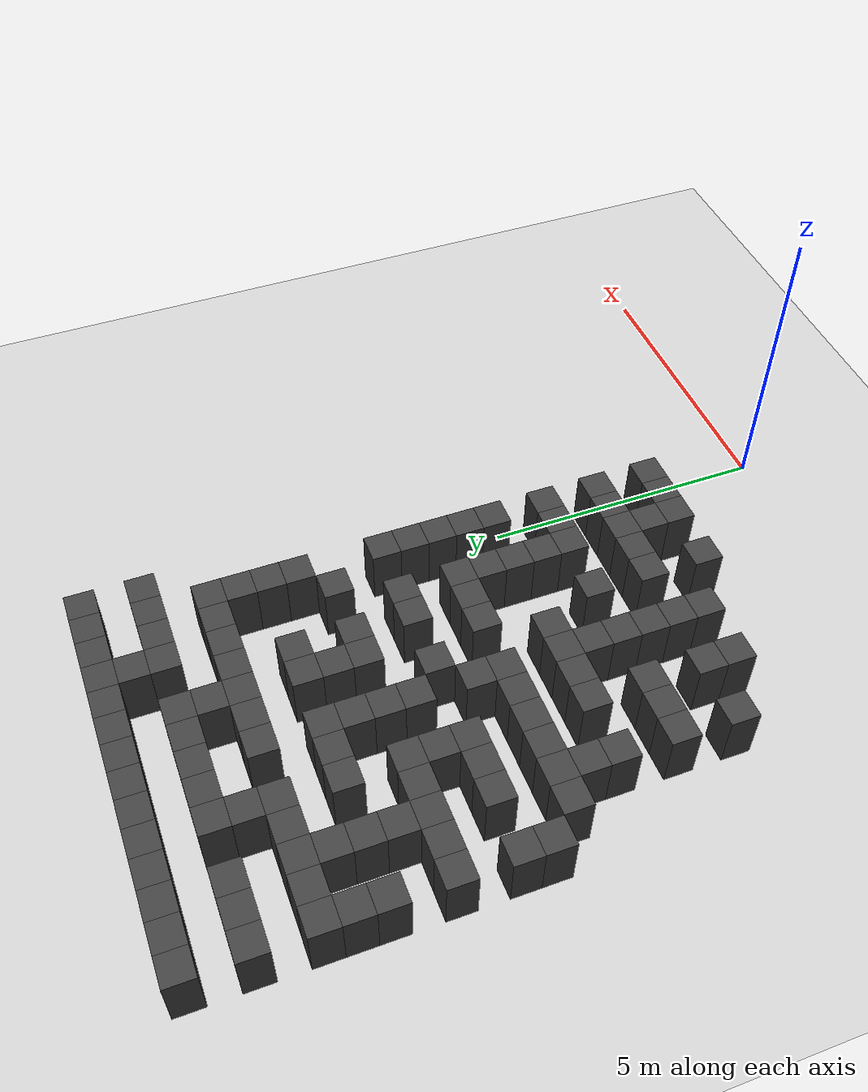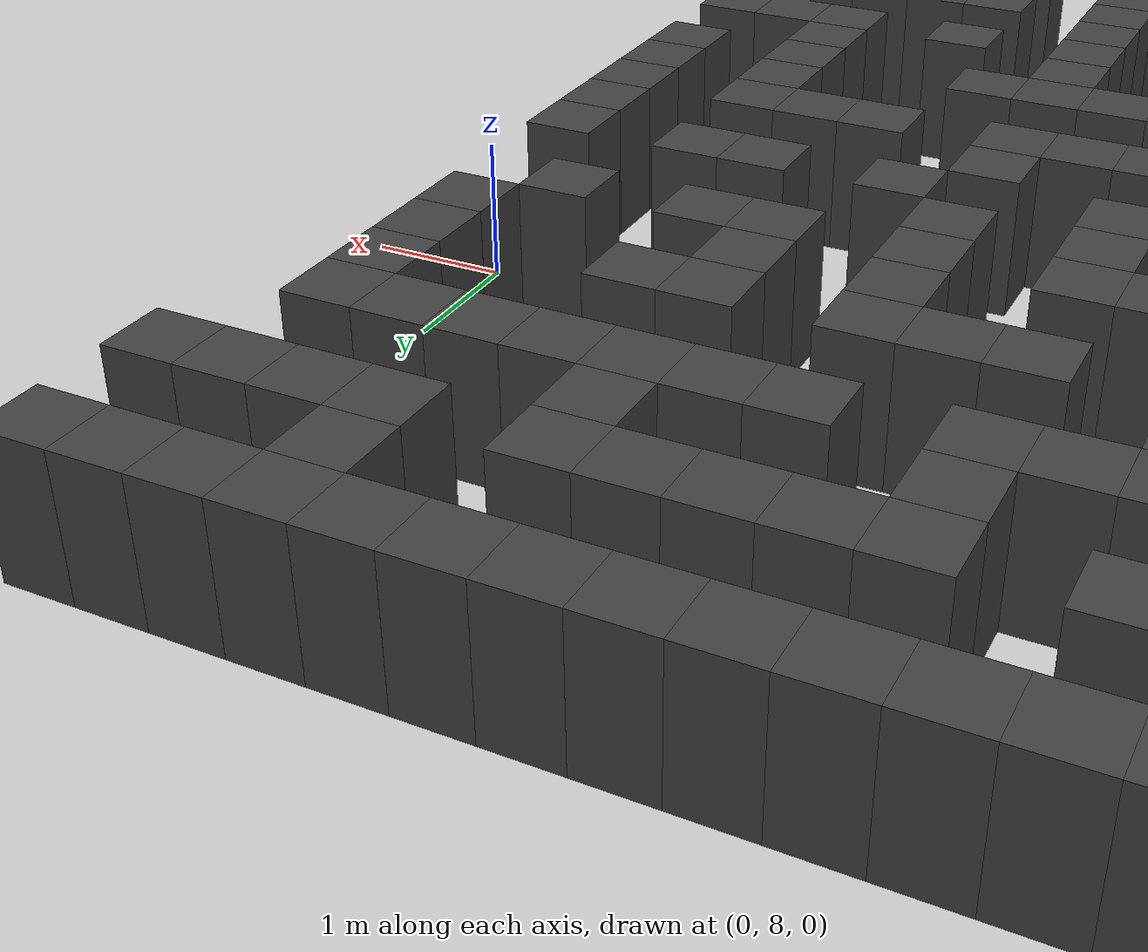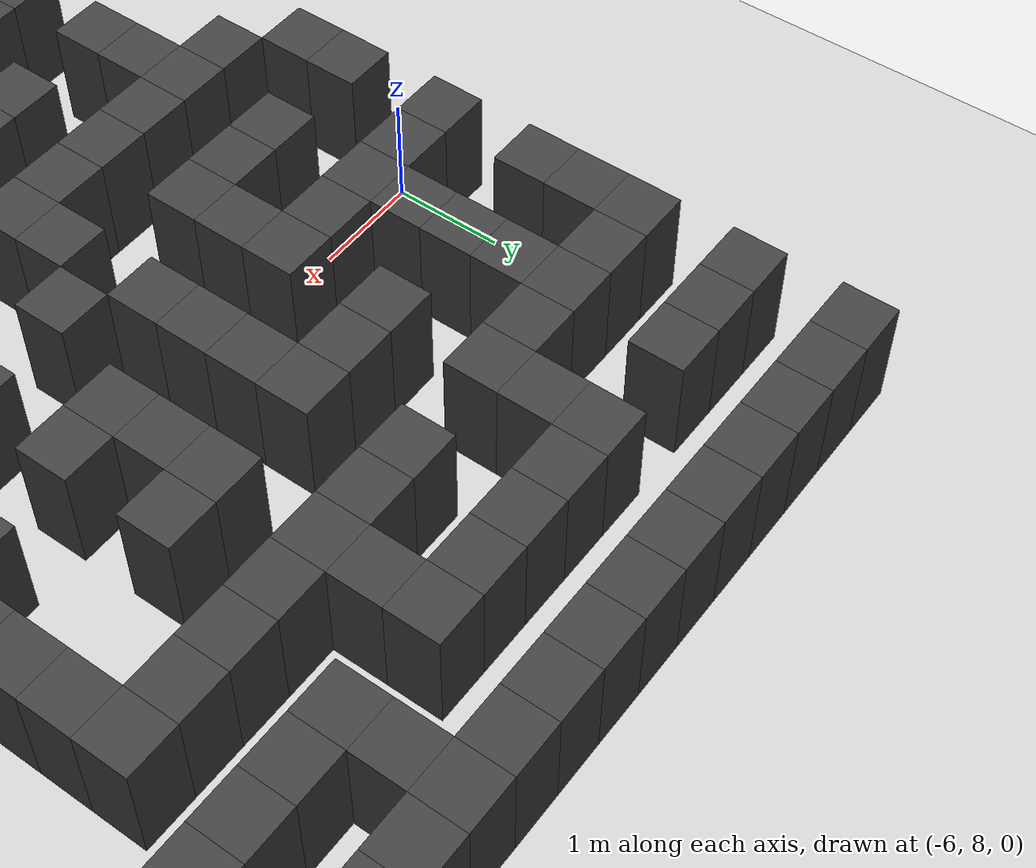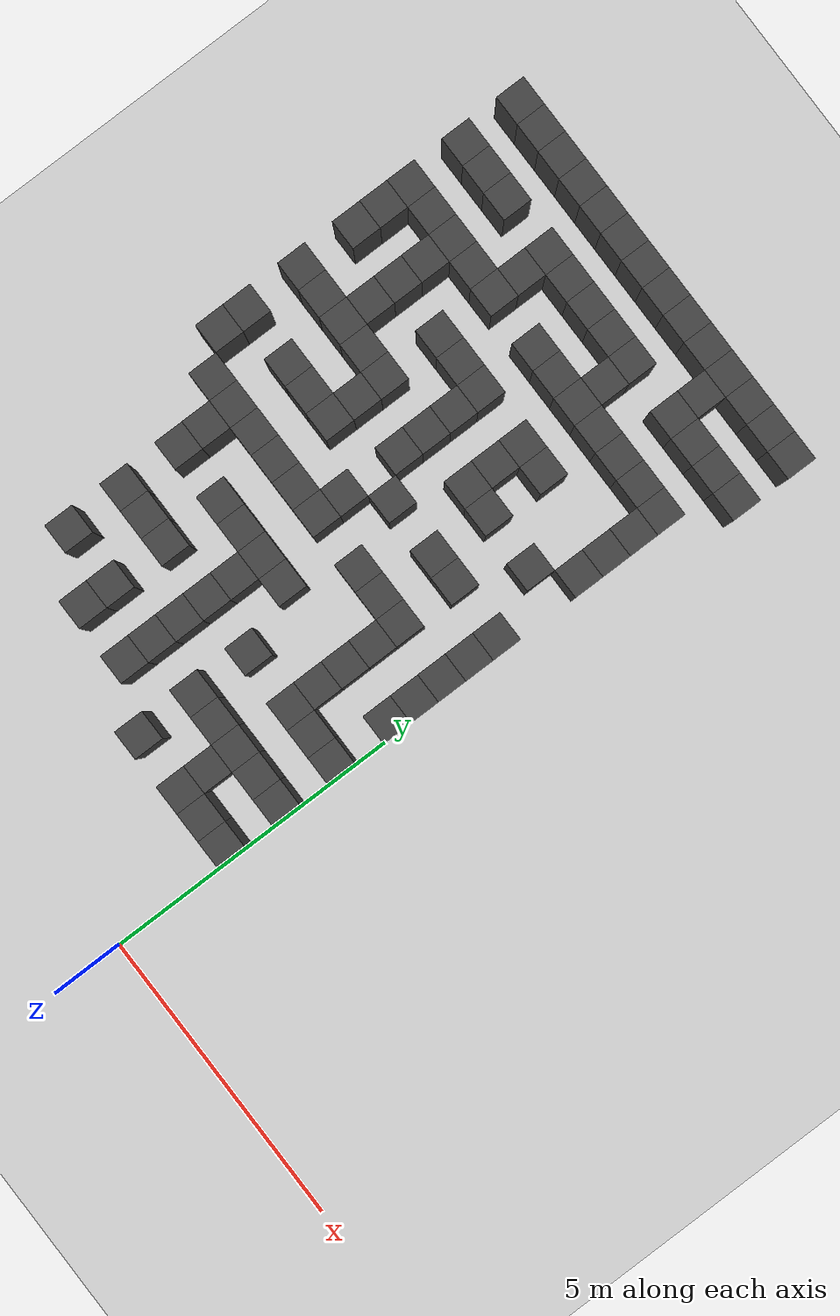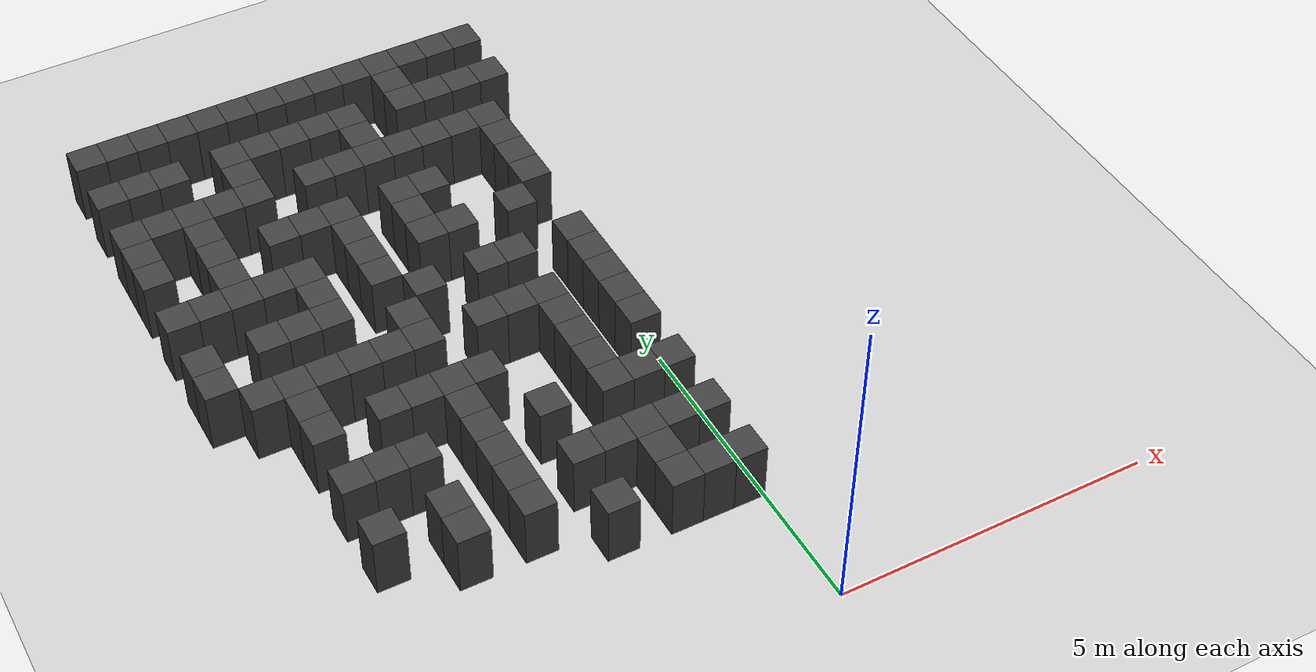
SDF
<sdf version="1.7">
 <world name="map_16734">
  <model name="ground_plane">
   <static>true</static>
   <link name="link">
    <collision name="collision">
     <geometry><plane><normal>0 0 1</normal><size>200 200</size></plane></geometry>
    </collision>
    <visual name="visual">
     <geometry><plane><normal>0 0 1</normal><size>200 200</size></plane></geometry>
     <material><ambient>0.8 0.8 0.8 1</ambient><diffuse>0.8 0.8 0.8 1</diffuse></material>
    </visual>
   </link>
  </model>
  <model name="maze_environment">
   <static>true</static>
   <link name="wall_12">
    <pose>-6.250 12.250 0.500 0 0 0</pose>
    <collision name="col"><geometry><box><size>0.5 0.5 1.0</size></box></geometry></collision>
    <visual name="vis">
     <geometry><box><size>0.5 0.5 1.0</size></box></geometry>
     <material><ambient>0.15 0.15 0.15 1</ambient><diffuse>0.25 0.25 0.25 1</diffuse></material>
    </visual>
   </link>
   <link name="wall_13">
    <pose>-5.750 12.250 0.500 0 0 0</pose>
    <collision name="col"><geometry><box><size>0.5 0.5 1.0</size></box></geometry></collision>
    <visual name="vis">
     <geometry><box><size>0.5 0.5 1.0</size></box></geometry>
     <material><ambient>0.15 0.15 0.15 1</ambient><diffuse>0.25 0.25 0.25 1</diffuse></material>
    </visual>
   </link>
   <link name="wall_14">
    <pose>-5.250 12.250 0.500 0 0 0</pose>
    <collision name="col"><geometry><box><size>0.5 0.5 1.0</size></box></geometry></collision>
    <visual name="vis">
     <geometry><box><size>0.5 0.5 1.0</size></box></geometry>
     <material><ambient>0.15 0.15 0.15 1</ambient><diffuse>0.25 0.25 0.25 1</diffuse></material>
    </visual>
   </link>
   <link name="wall_15">
    <pose>-4.750 12.250 0.500 0 0 0</pose>
    <collision name="col"><geometry><box><size>0.5 0.5 1.0</size></box></geometry></collision>
    <visual name="vis">
     <geometry><box><size>0.5 0.5 1.0</size></box></geometry>
     <material><ambient>0.15 0.15 0.15 1</ambient><diffuse>0.25 0.25 0.25 1</diffuse></material>
    </visual>
   </link>
   <link name="wall_16">
    <pose>-4.250 12.250 0.500 0 0 0</pose>
    <collision name="col"><geometry><box><size>0.5 0.5 1.0</size></box></geometry></collision>
    <visual name="vis">
     <geometry><box><size>0.5 0.5 1.0</size></box></geometry>
     <material><ambient>0.15 0.15 0.15 1</ambient><diffuse>0.25 0.25 0.25 1</diffuse></material>
    </visual>
   </link>
   <link name="wall_17">
    <pose>-3.750 12.250 0.500 0 0 0</pose>
    <collision name="col"><geometry><box><size>0.5 0.5 1.0</size></box></geometry></collision>
    <visual name="vis">
     <geometry><box><size>0.5 0.5 1.0</size></box></geometry>
     <material><ambient>0.15 0.15 0.15 1</ambient><diffuse>0.25 0.25 0.25 1</diffuse></material>
    </visual>
   </link>
   <link name="wall_18">
    <pose>-3.250 12.250 0.500 0 0 0</pose>
    <collision name="col"><geometry><box><size>0.5 0.5 1.0</size></box></geometry></collision>
    <visual name="vis">
     <geometry><box><size>0.5 0.5 1.0</size></box></geometry>
     <material><ambient>0.15 0.15 0.15 1</ambient><diffuse>0.25 0.25 0.25 1</diffuse></material>
    </visual>
   </link>
   <link name="wall_19">
    <pose>-2.750 12.250 0.500 0 0 0</pose>
    <collision name="col"><geometry><box><size>0.5 0.5 1.0</size></box></geometry></collision>
    <visual name="vis">
     <geometry><box><size>0.5 0.5 1.0</size></box></geometry>
     <material><ambient>0.15 0.15 0.15 1</ambient><diffuse>0.25 0.25 0.25 1</diffuse></material>
    </visual>
   </link>
   <link name="wall_20">
    <pose>-2.250 12.250 0.500 0 0 0</pose>
    <collision name="col"><geometry><box><size>0.5 0.5 1.0</size></box></geometry></collision>
    <visual name="vis">
     <geometry><box><size>0.5 0.5 1.0</size></box></geometry>
     <material><ambient>0.15 0.15 0.15 1</ambient><diffuse>0.25 0.25 0.25 1</diffuse></material>
    </visual>
   </link>
   <link name="wall_21">
    <pose>-1.750 12.250 0.500 0 0 0</pose>
    <collision name="col"><geometry><box><size>0.5 0.5 1.0</size></box></geometry></collision>
    <visual name="vis">
     <geometry><box><size>0.5 0.5 1.0</size></box></geometry>
     <material><ambient>0.15 0.15 0.15 1</ambient><diffuse>0.25 0.25 0.25 1</diffuse></material>
    </visual>
   </link>
   <link name="wall_22">
    <pose>-1.250 12.250 0.500 0 0 0</pose>
    <collision name="col"><geometry><box><size>0.5 0.5 1.0</size></box></geometry></collision>
    <visual name="vis">
     <geometry><box><size>0.5 0.5 1.0</size></box></geometry>
     <material><ambient>0.15 0.15 0.15 1</ambient><diffuse>0.25 0.25 0.25 1</diffuse></material>
    </visual>
   </link>
   <link name="wall_23">
    <pose>-0.750 12.250 0.500 0 0 0</pose>
    <collision name="col"><geometry><box><size>0.5 0.5 1.0</size></box></geometry></collision>
    <visual name="vis">
     <geometry><box><size>0.5 0.5 1.0</size></box></geometry>
     <material><ambient>0.15 0.15 0.15 1</ambient><diffuse>0.25 0.25 0.25 1</diffuse></material>
    </visual>
   </link>
   <link name="wall_24">
    <pose>-0.250 12.250 0.500 0 0 0</pose>
    <collision name="col"><geometry><box><size>0.5 0.5 1.0</size></box></geometry></collision>
    <visual name="vis">
     <geometry><box><size>0.5 0.5 1.0</size></box></geometry>
     <material><ambient>0.15 0.15 0.15 1</ambient><diffuse>0.25 0.25 0.25 1</diffuse></material>
    </visual>
   </link>
   <link name="wall_25">
    <pose>0.250 12.250 0.500 0 0 0</pose>
    <collision name="col"><geometry><box><size>0.5 0.5 1.0</size></box></geometry></collision>
    <visual name="vis">
     <geometry><box><size>0.5 0.5 1.0</size></box></geometry>
     <material><ambient>0.15 0.15 0.15 1</ambient><diffuse>0.25 0.25 0.25 1</diffuse></material>
    </visual>
   </link>
   <link name="wall_53">
    <pose>-1.250 11.750 0.500 0 0 0</pose>
    <collision name="col"><geometry><box><size>0.5 0.5 1.0</size></box></geometry></collision>
    <visual name="vis">
     <geometry><box><size>0.5 0.5 1.0</size></box></geometry>
     <material><ambient>0.15 0.15 0.15 1</ambient><diffuse>0.25 0.25 0.25 1</diffuse></material>
    </visual>
   </link>
   <link name="wall_66">
    <pose>-6.250 11.250 0.500 0 0 0</pose>
    <collision name="col"><geometry><box><size>0.5 0.5 1.0</size></box></geometry></collision>
    <visual name="vis">
     <geometry><box><size>0.5 0.5 1.0</size></box></geometry>
     <material><ambient>0.15 0.15 0.15 1</ambient><diffuse>0.25 0.25 0.25 1</diffuse></material>
    </visual>
   </link>
   <link name="wall_67">
    <pose>-5.750 11.250 0.500 0 0 0</pose>
    <collision name="col"><geometry><box><size>0.5 0.5 1.0</size></box></geometry></collision>
    <visual name="vis">
     <geometry><box><size>0.5 0.5 1.0</size></box></geometry>
     <material><ambient>0.15 0.15 0.15 1</ambient><diffuse>0.25 0.25 0.25 1</diffuse></material>
    </visual>
   </link>
   <link name="wall_68">
    <pose>-5.250 11.250 0.500 0 0 0</pose>
    <collision name="col"><geometry><box><size>0.5 0.5 1.0</size></box></geometry></collision>
    <visual name="vis">
     <geometry><box><size>0.5 0.5 1.0</size></box></geometry>
     <material><ambient>0.15 0.15 0.15 1</ambient><diffuse>0.25 0.25 0.25 1</diffuse></material>
    </visual>
   </link>
   <link name="wall_69">
    <pose>-4.250 11.250 0.500 0 0 0</pose>
    <collision name="col"><geometry><box><size>0.5 0.5 1.0</size></box></geometry></collision>
    <visual name="vis">
     <geometry><box><size>0.5 0.5 1.0</size></box></geometry>
     <material><ambient>0.15 0.15 0.15 1</ambient><diffuse>0.25 0.25 0.25 1</diffuse></material>
    </visual>
   </link>
   <link name="wall_70">
    <pose>-3.750 11.250 0.500 0 0 0</pose>
    <collision name="col"><geometry><box><size>0.5 0.5 1.0</size></box></geometry></collision>
    <visual name="vis">
     <geometry><box><size>0.5 0.5 1.0</size></box></geometry>
     <material><ambient>0.15 0.15 0.15 1</ambient><diffuse>0.25 0.25 0.25 1</diffuse></material>
    </visual>
   </link>
   <link name="wall_71">
    <pose>-3.250 11.250 0.500 0 0 0</pose>
    <collision name="col"><geometry><box><size>0.5 0.5 1.0</size></box></geometry></collision>
    <visual name="vis">
     <geometry><box><size>0.5 0.5 1.0</size></box></geometry>
     <material><ambient>0.15 0.15 0.15 1</ambient><diffuse>0.25 0.25 0.25 1</diffuse></material>
    </visual>
   </link>
   <link name="wall_72">
    <pose>-2.750 11.250 0.500 0 0 0</pose>
    <collision name="col"><geometry><box><size>0.5 0.5 1.0</size></box></geometry></collision>
    <visual name="vis">
     <geometry><box><size>0.5 0.5 1.0</size></box></geometry>
     <material><ambient>0.15 0.15 0.15 1</ambient><diffuse>0.25 0.25 0.25 1</diffuse></material>
    </visual>
   </link>
   <link name="wall_73">
    <pose>-2.250 11.250 0.500 0 0 0</pose>
    <collision name="col"><geometry><box><size>0.5 0.5 1.0</size></box></geometry></collision>
    <visual name="vis">
     <geometry><box><size>0.5 0.5 1.0</size></box></geometry>
     <material><ambient>0.15 0.15 0.15 1</ambient><diffuse>0.25 0.25 0.25 1</diffuse></material>
    </visual>
   </link>
   <link name="wall_74">
    <pose>-1.250 11.250 0.500 0 0 0</pose>
    <collision name="col"><geometry><box><size>0.5 0.5 1.0</size></box></geometry></collision>
    <visual name="vis">
     <geometry><box><size>0.5 0.5 1.0</size></box></geometry>
     <material><ambient>0.15 0.15 0.15 1</ambient><diffuse>0.25 0.25 0.25 1</diffuse></material>
    </visual>
   </link>
   <link name="wall_75">
    <pose>-0.750 11.250 0.500 0 0 0</pose>
    <collision name="col"><geometry><box><size>0.5 0.5 1.0</size></box></geometry></collision>
    <visual name="vis">
     <geometry><box><size>0.5 0.5 1.0</size></box></geometry>
     <material><ambient>0.15 0.15 0.15 1</ambient><diffuse>0.25 0.25 0.25 1</diffuse></material>
    </visual>
   </link>
   <link name="wall_76">
    <pose>-0.250 11.250 0.500 0 0 0</pose>
    <collision name="col"><geometry><box><size>0.5 0.5 1.0</size></box></geometry></collision>
    <visual name="vis">
     <geometry><box><size>0.5 0.5 1.0</size></box></geometry>
     <material><ambient>0.15 0.15 0.15 1</ambient><diffuse>0.25 0.25 0.25 1</diffuse></material>
    </visual>
   </link>
   <link name="wall_77">
    <pose>0.250 11.250 0.500 0 0 0</pose>
    <collision name="col"><geometry><box><size>0.5 0.5 1.0</size></box></geometry></collision>
    <visual name="vis">
     <geometry><box><size>0.5 0.5 1.0</size></box></geometry>
     <material><ambient>0.15 0.15 0.15 1</ambient><diffuse>0.25 0.25 0.25 1</diffuse></material>
    </visual>
   </link>
   <link name="wall_100">
    <pose>-4.250 10.750 0.500 0 0 0</pose>
    <collision name="col"><geometry><box><size>0.5 0.5 1.0</size></box></geometry></collision>
    <visual name="vis">
     <geometry><box><size>0.5 0.5 1.0</size></box></geometry>
     <material><ambient>0.15 0.15 0.15 1</ambient><diffuse>0.25 0.25 0.25 1</diffuse></material>
    </visual>
   </link>
   <link name="wall_101">
    <pose>-2.250 10.750 0.500 0 0 0</pose>
    <collision name="col"><geometry><box><size>0.5 0.5 1.0</size></box></geometry></collision>
    <visual name="vis">
     <geometry><box><size>0.5 0.5 1.0</size></box></geometry>
     <material><ambient>0.15 0.15 0.15 1</ambient><diffuse>0.25 0.25 0.25 1</diffuse></material>
    </visual>
   </link>
   <link name="wall_116">
    <pose>-6.250 10.250 0.500 0 0 0</pose>
    <collision name="col"><geometry><box><size>0.5 0.5 1.0</size></box></geometry></collision>
    <visual name="vis">
     <geometry><box><size>0.5 0.5 1.0</size></box></geometry>
     <material><ambient>0.15 0.15 0.15 1</ambient><diffuse>0.25 0.25 0.25 1</diffuse></material>
    </visual>
   </link>
   <link name="wall_117">
    <pose>-5.750 10.250 0.500 0 0 0</pose>
    <collision name="col"><geometry><box><size>0.5 0.5 1.0</size></box></geometry></collision>
    <visual name="vis">
     <geometry><box><size>0.5 0.5 1.0</size></box></geometry>
     <material><ambient>0.15 0.15 0.15 1</ambient><diffuse>0.25 0.25 0.25 1</diffuse></material>
    </visual>
   </link>
   <link name="wall_118">
    <pose>-5.250 10.250 0.500 0 0 0</pose>
    <collision name="col"><geometry><box><size>0.5 0.5 1.0</size></box></geometry></collision>
    <visual name="vis">
     <geometry><box><size>0.5 0.5 1.0</size></box></geometry>
     <material><ambient>0.15 0.15 0.15 1</ambient><diffuse>0.25 0.25 0.25 1</diffuse></material>
    </visual>
   </link>
   <link name="wall_119">
    <pose>-4.750 10.250 0.500 0 0 0</pose>
    <collision name="col"><geometry><box><size>0.5 0.5 1.0</size></box></geometry></collision>
    <visual name="vis">
     <geometry><box><size>0.5 0.5 1.0</size></box></geometry>
     <material><ambient>0.15 0.15 0.15 1</ambient><diffuse>0.25 0.25 0.25 1</diffuse></material>
    </visual>
   </link>
   <link name="wall_120">
    <pose>-4.250 10.250 0.500 0 0 0</pose>
    <collision name="col"><geometry><box><size>0.5 0.5 1.0</size></box></geometry></collision>
    <visual name="vis">
     <geometry><box><size>0.5 0.5 1.0</size></box></geometry>
     <material><ambient>0.15 0.15 0.15 1</ambient><diffuse>0.25 0.25 0.25 1</diffuse></material>
    </visual>
   </link>
   <link name="wall_121">
    <pose>-3.250 10.250 0.500 0 0 0</pose>
    <collision name="col"><geometry><box><size>0.5 0.5 1.0</size></box></geometry></collision>
    <visual name="vis">
     <geometry><box><size>0.5 0.5 1.0</size></box></geometry>
     <material><ambient>0.15 0.15 0.15 1</ambient><diffuse>0.25 0.25 0.25 1</diffuse></material>
    </visual>
   </link>
   <link name="wall_122">
    <pose>-2.750 10.250 0.500 0 0 0</pose>
    <collision name="col"><geometry><box><size>0.5 0.5 1.0</size></box></geometry></collision>
    <visual name="vis">
     <geometry><box><size>0.5 0.5 1.0</size></box></geometry>
     <material><ambient>0.15 0.15 0.15 1</ambient><diffuse>0.25 0.25 0.25 1</diffuse></material>
    </visual>
   </link>
   <link name="wall_123">
    <pose>-2.250 10.250 0.500 0 0 0</pose>
    <collision name="col"><geometry><box><size>0.5 0.5 1.0</size></box></geometry></collision>
    <visual name="vis">
     <geometry><box><size>0.5 0.5 1.0</size></box></geometry>
     <material><ambient>0.15 0.15 0.15 1</ambient><diffuse>0.25 0.25 0.25 1</diffuse></material>
    </visual>
   </link>
   <link name="wall_124">
    <pose>-1.750 10.250 0.500 0 0 0</pose>
    <collision name="col"><geometry><box><size>0.5 0.5 1.0</size></box></geometry></collision>
    <visual name="vis">
     <geometry><box><size>0.5 0.5 1.0</size></box></geometry>
     <material><ambient>0.15 0.15 0.15 1</ambient><diffuse>0.25 0.25 0.25 1</diffuse></material>
    </visual>
   </link>
   <link name="wall_125">
    <pose>-1.250 10.250 0.500 0 0 0</pose>
    <collision name="col"><geometry><box><size>0.5 0.5 1.0</size></box></geometry></collision>
    <visual name="vis">
     <geometry><box><size>0.5 0.5 1.0</size></box></geometry>
     <material><ambient>0.15 0.15 0.15 1</ambient><diffuse>0.25 0.25 0.25 1</diffuse></material>
    </visual>
   </link>
   <link name="wall_126">
    <pose>-0.750 10.250 0.500 0 0 0</pose>
    <collision name="col"><geometry><box><size>0.5 0.5 1.0</size></box></geometry></collision>
    <visual name="vis">
     <geometry><box><size>0.5 0.5 1.0</size></box></geometry>
     <material><ambient>0.15 0.15 0.15 1</ambient><diffuse>0.25 0.25 0.25 1</diffuse></material>
    </visual>
   </link>
   <link name="wall_127">
    <pose>-0.250 10.250 0.500 0 0 0</pose>
    <collision name="col"><geometry><box><size>0.5 0.5 1.0</size></box></geometry></collision>
    <visual name="vis">
     <geometry><box><size>0.5 0.5 1.0</size></box></geometry>
     <material><ambient>0.15 0.15 0.15 1</ambient><diffuse>0.25 0.25 0.25 1</diffuse></material>
    </visual>
   </link>
   <link name="wall_148">
    <pose>-6.250 9.750 0.500 0 0 0</pose>
    <collision name="col"><geometry><box><size>0.5 0.5 1.0</size></box></geometry></collision>
    <visual name="vis">
     <geometry><box><size>0.5 0.5 1.0</size></box></geometry>
     <material><ambient>0.15 0.15 0.15 1</ambient><diffuse>0.25 0.25 0.25 1</diffuse></material>
    </visual>
   </link>
   <link name="wall_149">
    <pose>-5.250 9.750 0.500 0 0 0</pose>
    <collision name="col"><geometry><box><size>0.5 0.5 1.0</size></box></geometry></collision>
    <visual name="vis">
     <geometry><box><size>0.5 0.5 1.0</size></box></geometry>
     <material><ambient>0.15 0.15 0.15 1</ambient><diffuse>0.25 0.25 0.25 1</diffuse></material>
    </visual>
   </link>
   <link name="wall_150">
    <pose>-0.250 9.750 0.500 0 0 0</pose>
    <collision name="col"><geometry><box><size>0.5 0.5 1.0</size></box></geometry></collision>
    <visual name="vis">
     <geometry><box><size>0.5 0.5 1.0</size></box></geometry>
     <material><ambient>0.15 0.15 0.15 1</ambient><diffuse>0.25 0.25 0.25 1</diffuse></material>
    </visual>
   </link>
   <link name="wall_166">
    <pose>-6.250 9.250 0.500 0 0 0</pose>
    <collision name="col"><geometry><box><size>0.5 0.5 1.0</size></box></geometry></collision>
    <visual name="vis">
     <geometry><box><size>0.5 0.5 1.0</size></box></geometry>
     <material><ambient>0.15 0.15 0.15 1</ambient><diffuse>0.25 0.25 0.25 1</diffuse></material>
    </visual>
   </link>
   <link name="wall_167">
    <pose>-5.250 9.250 0.500 0 0 0</pose>
    <collision name="col"><geometry><box><size>0.5 0.5 1.0</size></box></geometry></collision>
    <visual name="vis">
     <geometry><box><size>0.5 0.5 1.0</size></box></geometry>
     <material><ambient>0.15 0.15 0.15 1</ambient><diffuse>0.25 0.25 0.25 1</diffuse></material>
    </visual>
   </link>
   <link name="wall_168">
    <pose>-4.250 9.250 0.500 0 0 0</pose>
    <collision name="col"><geometry><box><size>0.5 0.5 1.0</size></box></geometry></collision>
    <visual name="vis">
     <geometry><box><size>0.5 0.5 1.0</size></box></geometry>
     <material><ambient>0.15 0.15 0.15 1</ambient><diffuse>0.25 0.25 0.25 1</diffuse></material>
    </visual>
   </link>
   <link name="wall_169">
    <pose>-3.750 9.250 0.500 0 0 0</pose>
    <collision name="col"><geometry><box><size>0.5 0.5 1.0</size></box></geometry></collision>
    <visual name="vis">
     <geometry><box><size>0.5 0.5 1.0</size></box></geometry>
     <material><ambient>0.15 0.15 0.15 1</ambient><diffuse>0.25 0.25 0.25 1</diffuse></material>
    </visual>
   </link>
   <link name="wall_170">
    <pose>-3.250 9.250 0.500 0 0 0</pose>
    <collision name="col"><geometry><box><size>0.5 0.5 1.0</size></box></geometry></collision>
    <visual name="vis">
     <geometry><box><size>0.5 0.5 1.0</size></box></geometry>
     <material><ambient>0.15 0.15 0.15 1</ambient><diffuse>0.25 0.25 0.25 1</diffuse></material>
    </visual>
   </link>
   <link name="wall_171">
    <pose>-2.250 9.250 0.500 0 0 0</pose>
    <collision name="col"><geometry><box><size>0.5 0.5 1.0</size></box></geometry></collision>
    <visual name="vis">
     <geometry><box><size>0.5 0.5 1.0</size></box></geometry>
     <material><ambient>0.15 0.15 0.15 1</ambient><diffuse>0.25 0.25 0.25 1</diffuse></material>
    </visual>
   </link>
   <link name="wall_172">
    <pose>-1.750 9.250 0.500 0 0 0</pose>
    <collision name="col"><geometry><box><size>0.5 0.5 1.0</size></box></geometry></collision>
    <visual name="vis">
     <geometry><box><size>0.5 0.5 1.0</size></box></geometry>
     <material><ambient>0.15 0.15 0.15 1</ambient><diffuse>0.25 0.25 0.25 1</diffuse></material>
    </visual>
   </link>
   <link name="wall_173">
    <pose>-0.250 9.250 0.500 0 0 0</pose>
    <collision name="col"><geometry><box><size>0.5 0.5 1.0</size></box></geometry></collision>
    <visual name="vis">
     <geometry><box><size>0.5 0.5 1.0</size></box></geometry>
     <material><ambient>0.15 0.15 0.15 1</ambient><diffuse>0.25 0.25 0.25 1</diffuse></material>
    </visual>
   </link>
   <link name="wall_190">
    <pose>-5.250 8.750 0.500 0 0 0</pose>
    <collision name="col"><geometry><box><size>0.5 0.5 1.0</size></box></geometry></collision>
    <visual name="vis">
     <geometry><box><size>0.5 0.5 1.0</size></box></geometry>
     <material><ambient>0.15 0.15 0.15 1</ambient><diffuse>0.25 0.25 0.25 1</diffuse></material>
    </visual>
   </link>
   <link name="wall_191">
    <pose>-3.250 8.750 0.500 0 0 0</pose>
    <collision name="col"><geometry><box><size>0.5 0.5 1.0</size></box></geometry></collision>
    <visual name="vis">
     <geometry><box><size>0.5 0.5 1.0</size></box></geometry>
     <material><ambient>0.15 0.15 0.15 1</ambient><diffuse>0.25 0.25 0.25 1</diffuse></material>
    </visual>
   </link>
   <link name="wall_192">
    <pose>-2.250 8.750 0.500 0 0 0</pose>
    <collision name="col"><geometry><box><size>0.5 0.5 1.0</size></box></geometry></collision>
    <visual name="vis">
     <geometry><box><size>0.5 0.5 1.0</size></box></geometry>
     <material><ambient>0.15 0.15 0.15 1</ambient><diffuse>0.25 0.25 0.25 1</diffuse></material>
    </visual>
   </link>
   <link name="wall_193">
    <pose>-0.250 8.750 0.500 0 0 0</pose>
    <collision name="col"><geometry><box><size>0.5 0.5 1.0</size></box></geometry></collision>
    <visual name="vis">
     <geometry><box><size>0.5 0.5 1.0</size></box></geometry>
     <material><ambient>0.15 0.15 0.15 1</ambient><diffuse>0.25 0.25 0.25 1</diffuse></material>
    </visual>
   </link>
   <link name="wall_208">
    <pose>-6.250 8.250 0.500 0 0 0</pose>
    <collision name="col"><geometry><box><size>0.5 0.5 1.0</size></box></geometry></collision>
    <visual name="vis">
     <geometry><box><size>0.5 0.5 1.0</size></box></geometry>
     <material><ambient>0.15 0.15 0.15 1</ambient><diffuse>0.25 0.25 0.25 1</diffuse></material>
    </visual>
   </link>
   <link name="wall_209">
    <pose>-5.750 8.250 0.500 0 0 0</pose>
    <collision name="col"><geometry><box><size>0.5 0.5 1.0</size></box></geometry></collision>
    <visual name="vis">
     <geometry><box><size>0.5 0.5 1.0</size></box></geometry>
     <material><ambient>0.15 0.15 0.15 1</ambient><diffuse>0.25 0.25 0.25 1</diffuse></material>
    </visual>
   </link>
   <link name="wall_210">
    <pose>-5.250 8.250 0.500 0 0 0</pose>
    <collision name="col"><geometry><box><size>0.5 0.5 1.0</size></box></geometry></collision>
    <visual name="vis">
     <geometry><box><size>0.5 0.5 1.0</size></box></geometry>
     <material><ambient>0.15 0.15 0.15 1</ambient><diffuse>0.25 0.25 0.25 1</diffuse></material>
    </visual>
   </link>
   <link name="wall_211">
    <pose>-4.750 8.250 0.500 0 0 0</pose>
    <collision name="col"><geometry><box><size>0.5 0.5 1.0</size></box></geometry></collision>
    <visual name="vis">
     <geometry><box><size>0.5 0.5 1.0</size></box></geometry>
     <material><ambient>0.15 0.15 0.15 1</ambient><diffuse>0.25 0.25 0.25 1</diffuse></material>
    </visual>
   </link>
   <link name="wall_212">
    <pose>-4.250 8.250 0.500 0 0 0</pose>
    <collision name="col"><geometry><box><size>0.5 0.5 1.0</size></box></geometry></collision>
    <visual name="vis">
     <geometry><box><size>0.5 0.5 1.0</size></box></geometry>
     <material><ambient>0.15 0.15 0.15 1</ambient><diffuse>0.25 0.25 0.25 1</diffuse></material>
    </visual>
   </link>
   <link name="wall_213">
    <pose>-3.250 8.250 0.500 0 0 0</pose>
    <collision name="col"><geometry><box><size>0.5 0.5 1.0</size></box></geometry></collision>
    <visual name="vis">
     <geometry><box><size>0.5 0.5 1.0</size></box></geometry>
     <material><ambient>0.15 0.15 0.15 1</ambient><diffuse>0.25 0.25 0.25 1</diffuse></material>
    </visual>
   </link>
   <link name="wall_214">
    <pose>-2.250 8.250 0.500 0 0 0</pose>
    <collision name="col"><geometry><box><size>0.5 0.5 1.0</size></box></geometry></collision>
    <visual name="vis">
     <geometry><box><size>0.5 0.5 1.0</size></box></geometry>
     <material><ambient>0.15 0.15 0.15 1</ambient><diffuse>0.25 0.25 0.25 1</diffuse></material>
    </visual>
   </link>
   <link name="wall_215">
    <pose>-1.750 8.250 0.500 0 0 0</pose>
    <collision name="col"><geometry><box><size>0.5 0.5 1.0</size></box></geometry></collision>
    <visual name="vis">
     <geometry><box><size>0.5 0.5 1.0</size></box></geometry>
     <material><ambient>0.15 0.15 0.15 1</ambient><diffuse>0.25 0.25 0.25 1</diffuse></material>
    </visual>
   </link>
   <link name="wall_216">
    <pose>-0.750 8.250 0.500 0 0 0</pose>
    <collision name="col"><geometry><box><size>0.5 0.5 1.0</size></box></geometry></collision>
    <visual name="vis">
     <geometry><box><size>0.5 0.5 1.0</size></box></geometry>
     <material><ambient>0.15 0.15 0.15 1</ambient><diffuse>0.25 0.25 0.25 1</diffuse></material>
    </visual>
   </link>
   <link name="wall_239">
    <pose>-4.250 7.750 0.500 0 0 0</pose>
    <collision name="col"><geometry><box><size>0.5 0.5 1.0</size></box></geometry></collision>
    <visual name="vis">
     <geometry><box><size>0.5 0.5 1.0</size></box></geometry>
     <material><ambient>0.15 0.15 0.15 1</ambient><diffuse>0.25 0.25 0.25 1</diffuse></material>
    </visual>
   </link>
   <link name="wall_240">
    <pose>-3.250 7.750 0.500 0 0 0</pose>
    <collision name="col"><geometry><box><size>0.5 0.5 1.0</size></box></geometry></collision>
    <visual name="vis">
     <geometry><box><size>0.5 0.5 1.0</size></box></geometry>
     <material><ambient>0.15 0.15 0.15 1</ambient><diffuse>0.25 0.25 0.25 1</diffuse></material>
    </visual>
   </link>
   <link name="wall_256">
    <pose>-6.250 7.250 0.500 0 0 0</pose>
    <collision name="col"><geometry><box><size>0.5 0.5 1.0</size></box></geometry></collision>
    <visual name="vis">
     <geometry><box><size>0.5 0.5 1.0</size></box></geometry>
     <material><ambient>0.15 0.15 0.15 1</ambient><diffuse>0.25 0.25 0.25 1</diffuse></material>
    </visual>
   </link>
   <link name="wall_257">
    <pose>-5.250 7.250 0.500 0 0 0</pose>
    <collision name="col"><geometry><box><size>0.5 0.5 1.0</size></box></geometry></collision>
    <visual name="vis">
     <geometry><box><size>0.5 0.5 1.0</size></box></geometry>
     <material><ambient>0.15 0.15 0.15 1</ambient><diffuse>0.25 0.25 0.25 1</diffuse></material>
    </visual>
   </link>
   <link name="wall_258">
    <pose>-4.750 7.250 0.500 0 0 0</pose>
    <collision name="col"><geometry><box><size>0.5 0.5 1.0</size></box></geometry></collision>
    <visual name="vis">
     <geometry><box><size>0.5 0.5 1.0</size></box></geometry>
     <material><ambient>0.15 0.15 0.15 1</ambient><diffuse>0.25 0.25 0.25 1</diffuse></material>
    </visual>
   </link>
   <link name="wall_259">
    <pose>-4.250 7.250 0.500 0 0 0</pose>
    <collision name="col"><geometry><box><size>0.5 0.5 1.0</size></box></geometry></collision>
    <visual name="vis">
     <geometry><box><size>0.5 0.5 1.0</size></box></geometry>
     <material><ambient>0.15 0.15 0.15 1</ambient><diffuse>0.25 0.25 0.25 1</diffuse></material>
    </visual>
   </link>
   <link name="wall_260">
    <pose>-2.750 7.250 0.500 0 0 0</pose>
    <collision name="col"><geometry><box><size>0.5 0.5 1.0</size></box></geometry></collision>
    <visual name="vis">
     <geometry><box><size>0.5 0.5 1.0</size></box></geometry>
     <material><ambient>0.15 0.15 0.15 1</ambient><diffuse>0.25 0.25 0.25 1</diffuse></material>
    </visual>
   </link>
   <link name="wall_261">
    <pose>-1.750 7.250 0.500 0 0 0</pose>
    <collision name="col"><geometry><box><size>0.5 0.5 1.0</size></box></geometry></collision>
    <visual name="vis">
     <geometry><box><size>0.5 0.5 1.0</size></box></geometry>
     <material><ambient>0.15 0.15 0.15 1</ambient><diffuse>0.25 0.25 0.25 1</diffuse></material>
    </visual>
   </link>
   <link name="wall_262">
    <pose>-1.250 7.250 0.500 0 0 0</pose>
    <collision name="col"><geometry><box><size>0.5 0.5 1.0</size></box></geometry></collision>
    <visual name="vis">
     <geometry><box><size>0.5 0.5 1.0</size></box></geometry>
     <material><ambient>0.15 0.15 0.15 1</ambient><diffuse>0.25 0.25 0.25 1</diffuse></material>
    </visual>
   </link>
   <link name="wall_263">
    <pose>-0.250 7.250 0.500 0 0 0</pose>
    <collision name="col"><geometry><box><size>0.5 0.5 1.0</size></box></geometry></collision>
    <visual name="vis">
     <geometry><box><size>0.5 0.5 1.0</size></box></geometry>
     <material><ambient>0.15 0.15 0.15 1</ambient><diffuse>0.25 0.25 0.25 1</diffuse></material>
    </visual>
   </link>
   <link name="wall_286">
    <pose>-6.250 6.750 0.500 0 0 0</pose>
    <collision name="col"><geometry><box><size>0.5 0.5 1.0</size></box></geometry></collision>
    <visual name="vis">
     <geometry><box><size>0.5 0.5 1.0</size></box></geometry>
     <material><ambient>0.15 0.15 0.15 1</ambient><diffuse>0.25 0.25 0.25 1</diffuse></material>
    </visual>
   </link>
   <link name="wall_287">
    <pose>-3.250 6.750 0.500 0 0 0</pose>
    <collision name="col"><geometry><box><size>0.5 0.5 1.0</size></box></geometry></collision>
    <visual name="vis">
     <geometry><box><size>0.5 0.5 1.0</size></box></geometry>
     <material><ambient>0.15 0.15 0.15 1</ambient><diffuse>0.25 0.25 0.25 1</diffuse></material>
    </visual>
   </link>
   <link name="wall_288">
    <pose>-0.250 6.750 0.500 0 0 0</pose>
    <collision name="col"><geometry><box><size>0.5 0.5 1.0</size></box></geometry></collision>
    <visual name="vis">
     <geometry><box><size>0.5 0.5 1.0</size></box></geometry>
     <material><ambient>0.15 0.15 0.15 1</ambient><diffuse>0.25 0.25 0.25 1</diffuse></material>
    </visual>
   </link>
   <link name="wall_306">
    <pose>-5.750 6.250 0.500 0 0 0</pose>
    <collision name="col"><geometry><box><size>0.5 0.5 1.0</size></box></geometry></collision>
    <visual name="vis">
     <geometry><box><size>0.5 0.5 1.0</size></box></geometry>
     <material><ambient>0.15 0.15 0.15 1</ambient><diffuse>0.25 0.25 0.25 1</diffuse></material>
    </visual>
   </link>
   <link name="wall_307">
    <pose>-5.250 6.250 0.500 0 0 0</pose>
    <collision name="col"><geometry><box><size>0.5 0.5 1.0</size></box></geometry></collision>
    <visual name="vis">
     <geometry><box><size>0.5 0.5 1.0</size></box></geometry>
     <material><ambient>0.15 0.15 0.15 1</ambient><diffuse>0.25 0.25 0.25 1</diffuse></material>
    </visual>
   </link>
   <link name="wall_308">
    <pose>-4.750 6.250 0.500 0 0 0</pose>
    <collision name="col"><geometry><box><size>0.5 0.5 1.0</size></box></geometry></collision>
    <visual name="vis">
     <geometry><box><size>0.5 0.5 1.0</size></box></geometry>
     <material><ambient>0.15 0.15 0.15 1</ambient><diffuse>0.25 0.25 0.25 1</diffuse></material>
    </visual>
   </link>
   <link name="wall_309">
    <pose>-4.250 6.250 0.500 0 0 0</pose>
    <collision name="col"><geometry><box><size>0.5 0.5 1.0</size></box></geometry></collision>
    <visual name="vis">
     <geometry><box><size>0.5 0.5 1.0</size></box></geometry>
     <material><ambient>0.15 0.15 0.15 1</ambient><diffuse>0.25 0.25 0.25 1</diffuse></material>
    </visual>
   </link>
   <link name="wall_310">
    <pose>-3.750 6.250 0.500 0 0 0</pose>
    <collision name="col"><geometry><box><size>0.5 0.5 1.0</size></box></geometry></collision>
    <visual name="vis">
     <geometry><box><size>0.5 0.5 1.0</size></box></geometry>
     <material><ambient>0.15 0.15 0.15 1</ambient><diffuse>0.25 0.25 0.25 1</diffuse></material>
    </visual>
   </link>
   <link name="wall_311">
    <pose>-3.250 6.250 0.500 0 0 0</pose>
    <collision name="col"><geometry><box><size>0.5 0.5 1.0</size></box></geometry></collision>
    <visual name="vis">
     <geometry><box><size>0.5 0.5 1.0</size></box></geometry>
     <material><ambient>0.15 0.15 0.15 1</ambient><diffuse>0.25 0.25 0.25 1</diffuse></material>
    </visual>
   </link>
   <link name="wall_312">
    <pose>-2.250 6.250 0.500 0 0 0</pose>
    <collision name="col"><geometry><box><size>0.5 0.5 1.0</size></box></geometry></collision>
    <visual name="vis">
     <geometry><box><size>0.5 0.5 1.0</size></box></geometry>
     <material><ambient>0.15 0.15 0.15 1</ambient><diffuse>0.25 0.25 0.25 1</diffuse></material>
    </visual>
   </link>
   <link name="wall_313">
    <pose>-1.750 6.250 0.500 0 0 0</pose>
    <collision name="col"><geometry><box><size>0.5 0.5 1.0</size></box></geometry></collision>
    <visual name="vis">
     <geometry><box><size>0.5 0.5 1.0</size></box></geometry>
     <material><ambient>0.15 0.15 0.15 1</ambient><diffuse>0.25 0.25 0.25 1</diffuse></material>
    </visual>
   </link>
   <link name="wall_314">
    <pose>-1.250 6.250 0.500 0 0 0</pose>
    <collision name="col"><geometry><box><size>0.5 0.5 1.0</size></box></geometry></collision>
    <visual name="vis">
     <geometry><box><size>0.5 0.5 1.0</size></box></geometry>
     <material><ambient>0.15 0.15 0.15 1</ambient><diffuse>0.25 0.25 0.25 1</diffuse></material>
    </visual>
   </link>
   <link name="wall_315">
    <pose>-0.250 6.250 0.500 0 0 0</pose>
    <collision name="col"><geometry><box><size>0.5 0.5 1.0</size></box></geometry></collision>
    <visual name="vis">
     <geometry><box><size>0.5 0.5 1.0</size></box></geometry>
     <material><ambient>0.15 0.15 0.15 1</ambient><diffuse>0.25 0.25 0.25 1</diffuse></material>
    </visual>
   </link>
   <link name="wall_337">
    <pose>-5.250 5.750 0.500 0 0 0</pose>
    <collision name="col"><geometry><box><size>0.5 0.5 1.0</size></box></geometry></collision>
    <visual name="vis">
     <geometry><box><size>0.5 0.5 1.0</size></box></geometry>
     <material><ambient>0.15 0.15 0.15 1</ambient><diffuse>0.25 0.25 0.25 1</diffuse></material>
    </visual>
   </link>
   <link name="wall_338">
    <pose>-1.250 5.750 0.500 0 0 0</pose>
    <collision name="col"><geometry><box><size>0.5 0.5 1.0</size></box></geometry></collision>
    <visual name="vis">
     <geometry><box><size>0.5 0.5 1.0</size></box></geometry>
     <material><ambient>0.15 0.15 0.15 1</ambient><diffuse>0.25 0.25 0.25 1</diffuse></material>
    </visual>
   </link>
   <link name="wall_339">
    <pose>-0.250 5.750 0.500 0 0 0</pose>
    <collision name="col"><geometry><box><size>0.5 0.5 1.0</size></box></geometry></collision>
    <visual name="vis">
     <geometry><box><size>0.5 0.5 1.0</size></box></geometry>
     <material><ambient>0.15 0.15 0.15 1</ambient><diffuse>0.25 0.25 0.25 1</diffuse></material>
    </visual>
   </link>
   <link name="wall_358">
    <pose>-5.250 5.250 0.500 0 0 0</pose>
    <collision name="col"><geometry><box><size>0.5 0.5 1.0</size></box></geometry></collision>
    <visual name="vis">
     <geometry><box><size>0.5 0.5 1.0</size></box></geometry>
     <material><ambient>0.15 0.15 0.15 1</ambient><diffuse>0.25 0.25 0.25 1</diffuse></material>
    </visual>
   </link>
   <link name="wall_359">
    <pose>-4.250 5.250 0.500 0 0 0</pose>
    <collision name="col"><geometry><box><size>0.5 0.5 1.0</size></box></geometry></collision>
    <visual name="vis">
     <geometry><box><size>0.5 0.5 1.0</size></box></geometry>
     <material><ambient>0.15 0.15 0.15 1</ambient><diffuse>0.25 0.25 0.25 1</diffuse></material>
    </visual>
   </link>
   <link name="wall_360">
    <pose>-3.750 5.250 0.500 0 0 0</pose>
    <collision name="col"><geometry><box><size>0.5 0.5 1.0</size></box></geometry></collision>
    <visual name="vis">
     <geometry><box><size>0.5 0.5 1.0</size></box></geometry>
     <material><ambient>0.15 0.15 0.15 1</ambient><diffuse>0.25 0.25 0.25 1</diffuse></material>
    </visual>
   </link>
   <link name="wall_361">
    <pose>-3.250 5.250 0.500 0 0 0</pose>
    <collision name="col"><geometry><box><size>0.5 0.5 1.0</size></box></geometry></collision>
    <visual name="vis">
     <geometry><box><size>0.5 0.5 1.0</size></box></geometry>
     <material><ambient>0.15 0.15 0.15 1</ambient><diffuse>0.25 0.25 0.25 1</diffuse></material>
    </visual>
   </link>
   <link name="wall_362">
    <pose>-2.750 5.250 0.500 0 0 0</pose>
    <collision name="col"><geometry><box><size>0.5 0.5 1.0</size></box></geometry></collision>
    <visual name="vis">
     <geometry><box><size>0.5 0.5 1.0</size></box></geometry>
     <material><ambient>0.15 0.15 0.15 1</ambient><diffuse>0.25 0.25 0.25 1</diffuse></material>
    </visual>
   </link>
   <link name="wall_363">
    <pose>-1.250 5.250 0.500 0 0 0</pose>
    <collision name="col"><geometry><box><size>0.5 0.5 1.0</size></box></geometry></collision>
    <visual name="vis">
     <geometry><box><size>0.5 0.5 1.0</size></box></geometry>
     <material><ambient>0.15 0.15 0.15 1</ambient><diffuse>0.25 0.25 0.25 1</diffuse></material>
    </visual>
   </link>
   <link name="wall_364">
    <pose>-0.250 5.250 0.500 0 0 0</pose>
    <collision name="col"><geometry><box><size>0.5 0.5 1.0</size></box></geometry></collision>
    <visual name="vis">
     <geometry><box><size>0.5 0.5 1.0</size></box></geometry>
     <material><ambient>0.15 0.15 0.15 1</ambient><diffuse>0.25 0.25 0.25 1</diffuse></material>
    </visual>
   </link>
   <link name="wall_383">
    <pose>-3.250 4.750 0.500 0 0 0</pose>
    <collision name="col"><geometry><box><size>0.5 0.5 1.0</size></box></geometry></collision>
    <visual name="vis">
     <geometry><box><size>0.5 0.5 1.0</size></box></geometry>
     <material><ambient>0.15 0.15 0.15 1</ambient><diffuse>0.25 0.25 0.25 1</diffuse></material>
    </visual>
   </link>
   <link name="wall_384">
    <pose>-1.250 4.750 0.500 0 0 0</pose>
    <collision name="col"><geometry><box><size>0.5 0.5 1.0</size></box></geometry></collision>
    <visual name="vis">
     <geometry><box><size>0.5 0.5 1.0</size></box></geometry>
     <material><ambient>0.15 0.15 0.15 1</ambient><diffuse>0.25 0.25 0.25 1</diffuse></material>
    </visual>
   </link>
   <link name="wall_402">
    <pose>-5.250 4.250 0.500 0 0 0</pose>
    <collision name="col"><geometry><box><size>0.5 0.5 1.0</size></box></geometry></collision>
    <visual name="vis">
     <geometry><box><size>0.5 0.5 1.0</size></box></geometry>
     <material><ambient>0.15 0.15 0.15 1</ambient><diffuse>0.25 0.25 0.25 1</diffuse></material>
    </visual>
   </link>
   <link name="wall_403">
    <pose>-4.750 4.250 0.500 0 0 0</pose>
    <collision name="col"><geometry><box><size>0.5 0.5 1.0</size></box></geometry></collision>
    <visual name="vis">
     <geometry><box><size>0.5 0.5 1.0</size></box></geometry>
     <material><ambient>0.15 0.15 0.15 1</ambient><diffuse>0.25 0.25 0.25 1</diffuse></material>
    </visual>
   </link>
   <link name="wall_404">
    <pose>-4.250 4.250 0.500 0 0 0</pose>
    <collision name="col"><geometry><box><size>0.5 0.5 1.0</size></box></geometry></collision>
    <visual name="vis">
     <geometry><box><size>0.5 0.5 1.0</size></box></geometry>
     <material><ambient>0.15 0.15 0.15 1</ambient><diffuse>0.25 0.25 0.25 1</diffuse></material>
    </visual>
   </link>
   <link name="wall_405">
    <pose>-3.250 4.250 0.500 0 0 0</pose>
    <collision name="col"><geometry><box><size>0.5 0.5 1.0</size></box></geometry></collision>
    <visual name="vis">
     <geometry><box><size>0.5 0.5 1.0</size></box></geometry>
     <material><ambient>0.15 0.15 0.15 1</ambient><diffuse>0.25 0.25 0.25 1</diffuse></material>
    </visual>
   </link>
   <link name="wall_406">
    <pose>-2.250 4.250 0.500 0 0 0</pose>
    <collision name="col"><geometry><box><size>0.5 0.5 1.0</size></box></geometry></collision>
    <visual name="vis">
     <geometry><box><size>0.5 0.5 1.0</size></box></geometry>
     <material><ambient>0.15 0.15 0.15 1</ambient><diffuse>0.25 0.25 0.25 1</diffuse></material>
    </visual>
   </link>
   <link name="wall_407">
    <pose>-1.250 4.250 0.500 0 0 0</pose>
    <collision name="col"><geometry><box><size>0.5 0.5 1.0</size></box></geometry></collision>
    <visual name="vis">
     <geometry><box><size>0.5 0.5 1.0</size></box></geometry>
     <material><ambient>0.15 0.15 0.15 1</ambient><diffuse>0.25 0.25 0.25 1</diffuse></material>
    </visual>
   </link>
   <link name="wall_408">
    <pose>-0.750 4.250 0.500 0 0 0</pose>
    <collision name="col"><geometry><box><size>0.5 0.5 1.0</size></box></geometry></collision>
    <visual name="vis">
     <geometry><box><size>0.5 0.5 1.0</size></box></geometry>
     <material><ambient>0.15 0.15 0.15 1</ambient><diffuse>0.25 0.25 0.25 1</diffuse></material>
    </visual>
   </link>
   <link name="wall_409">
    <pose>-0.250 4.250 0.500 0 0 0</pose>
    <collision name="col"><geometry><box><size>0.5 0.5 1.0</size></box></geometry></collision>
    <visual name="vis">
     <geometry><box><size>0.5 0.5 1.0</size></box></geometry>
     <material><ambient>0.15 0.15 0.15 1</ambient><diffuse>0.25 0.25 0.25 1</diffuse></material>
    </visual>
   </link>
   <link name="wall_432">
    <pose>-3.250 3.750 0.500 0 0 0</pose>
    <collision name="col"><geometry><box><size>0.5 0.5 1.0</size></box></geometry></collision>
    <visual name="vis">
     <geometry><box><size>0.5 0.5 1.0</size></box></geometry>
     <material><ambient>0.15 0.15 0.15 1</ambient><diffuse>0.25 0.25 0.25 1</diffuse></material>
    </visual>
   </link>
   <link name="wall_446">
    <pose>-5.250 3.250 0.500 0 0 0</pose>
    <collision name="col"><geometry><box><size>0.5 0.5 1.0</size></box></geometry></collision>
    <visual name="vis">
     <geometry><box><size>0.5 0.5 1.0</size></box></geometry>
     <material><ambient>0.15 0.15 0.15 1</ambient><diffuse>0.25 0.25 0.25 1</diffuse></material>
    </visual>
   </link>
   <link name="wall_447">
    <pose>-4.250 3.250 0.500 0 0 0</pose>
    <collision name="col"><geometry><box><size>0.5 0.5 1.0</size></box></geometry></collision>
    <visual name="vis">
     <geometry><box><size>0.5 0.5 1.0</size></box></geometry>
     <material><ambient>0.15 0.15 0.15 1</ambient><diffuse>0.25 0.25 0.25 1</diffuse></material>
    </visual>
   </link>
   <link name="wall_448">
    <pose>-3.250 3.250 0.500 0 0 0</pose>
    <collision name="col"><geometry><box><size>0.5 0.5 1.0</size></box></geometry></collision>
    <visual name="vis">
     <geometry><box><size>0.5 0.5 1.0</size></box></geometry>
     <material><ambient>0.15 0.15 0.15 1</ambient><diffuse>0.25 0.25 0.25 1</diffuse></material>
    </visual>
   </link>
   <link name="wall_449">
    <pose>-2.250 3.250 0.500 0 0 0</pose>
    <collision name="col"><geometry><box><size>0.5 0.5 1.0</size></box></geometry></collision>
    <visual name="vis">
     <geometry><box><size>0.5 0.5 1.0</size></box></geometry>
     <material><ambient>0.15 0.15 0.15 1</ambient><diffuse>0.25 0.25 0.25 1</diffuse></material>
    </visual>
   </link>
   <link name="wall_450">
    <pose>-1.750 3.250 0.500 0 0 0</pose>
    <collision name="col"><geometry><box><size>0.5 0.5 1.0</size></box></geometry></collision>
    <visual name="vis">
     <geometry><box><size>0.5 0.5 1.0</size></box></geometry>
     <material><ambient>0.15 0.15 0.15 1</ambient><diffuse>0.25 0.25 0.25 1</diffuse></material>
    </visual>
   </link>
   <link name="wall_451">
    <pose>-1.250 3.250 0.500 0 0 0</pose>
    <collision name="col"><geometry><box><size>0.5 0.5 1.0</size></box></geometry></collision>
    <visual name="vis">
     <geometry><box><size>0.5 0.5 1.0</size></box></geometry>
     <material><ambient>0.15 0.15 0.15 1</ambient><diffuse>0.25 0.25 0.25 1</diffuse></material>
    </visual>
   </link>
   <link name="wall_452">
    <pose>-0.750 3.250 0.500 0 0 0</pose>
    <collision name="col"><geometry><box><size>0.5 0.5 1.0</size></box></geometry></collision>
    <visual name="vis">
     <geometry><box><size>0.5 0.5 1.0</size></box></geometry>
     <material><ambient>0.15 0.15 0.15 1</ambient><diffuse>0.25 0.25 0.25 1</diffuse></material>
    </visual>
   </link>
   <link name="wall_453">
    <pose>-0.250 3.250 0.500 0 0 0</pose>
    <collision name="col"><geometry><box><size>0.5 0.5 1.0</size></box></geometry></collision>
    <visual name="vis">
     <geometry><box><size>0.5 0.5 1.0</size></box></geometry>
     <material><ambient>0.15 0.15 0.15 1</ambient><diffuse>0.25 0.25 0.25 1</diffuse></material>
    </visual>
   </link>
   <link name="wall_478">
    <pose>-4.250 2.750 0.500 0 0 0</pose>
    <collision name="col"><geometry><box><size>0.5 0.5 1.0</size></box></geometry></collision>
    <visual name="vis">
     <geometry><box><size>0.5 0.5 1.0</size></box></geometry>
     <material><ambient>0.15 0.15 0.15 1</ambient><diffuse>0.25 0.25 0.25 1</diffuse></material>
    </visual>
   </link>
   <link name="wall_479">
    <pose>-3.250 2.750 0.500 0 0 0</pose>
    <collision name="col"><geometry><box><size>0.5 0.5 1.0</size></box></geometry></collision>
    <visual name="vis">
     <geometry><box><size>0.5 0.5 1.0</size></box></geometry>
     <material><ambient>0.15 0.15 0.15 1</ambient><diffuse>0.25 0.25 0.25 1</diffuse></material>
    </visual>
   </link>
   <link name="wall_480">
    <pose>-1.250 2.750 0.500 0 0 0</pose>
    <collision name="col"><geometry><box><size>0.5 0.5 1.0</size></box></geometry></collision>
    <visual name="vis">
     <geometry><box><size>0.5 0.5 1.0</size></box></geometry>
     <material><ambient>0.15 0.15 0.15 1</ambient><diffuse>0.25 0.25 0.25 1</diffuse></material>
    </visual>
   </link>
   <link name="wall_500">
    <pose>-2.250 2.250 0.500 0 0 0</pose>
    <collision name="col"><geometry><box><size>0.5 0.5 1.0</size></box></geometry></collision>
    <visual name="vis">
     <geometry><box><size>0.5 0.5 1.0</size></box></geometry>
     <material><ambient>0.15 0.15 0.15 1</ambient><diffuse>0.25 0.25 0.25 1</diffuse></material>
    </visual>
   </link>
   <link name="wall_501">
    <pose>-1.250 2.250 0.500 0 0 0</pose>
    <collision name="col"><geometry><box><size>0.5 0.5 1.0</size></box></geometry></collision>
    <visual name="vis">
     <geometry><box><size>0.5 0.5 1.0</size></box></geometry>
     <material><ambient>0.15 0.15 0.15 1</ambient><diffuse>0.25 0.25 0.25 1</diffuse></material>
    </visual>
   </link>
   <link name="wall_502">
    <pose>-0.750 2.250 0.500 0 0 0</pose>
    <collision name="col"><geometry><box><size>0.5 0.5 1.0</size></box></geometry></collision>
    <visual name="vis">
     <geometry><box><size>0.5 0.5 1.0</size></box></geometry>
     <material><ambient>0.15 0.15 0.15 1</ambient><diffuse>0.25 0.25 0.25 1</diffuse></material>
    </visual>
   </link>
   <link name="wall_503">
    <pose>-0.250 2.250 0.500 0 0 0</pose>
    <collision name="col"><geometry><box><size>0.5 0.5 1.0</size></box></geometry></collision>
    <visual name="vis">
     <geometry><box><size>0.5 0.5 1.0</size></box></geometry>
     <material><ambient>0.15 0.15 0.15 1</ambient><diffuse>0.25 0.25 0.25 1</diffuse></material>
    </visual>
   </link>
  </model>
 </world>
</sdf>
